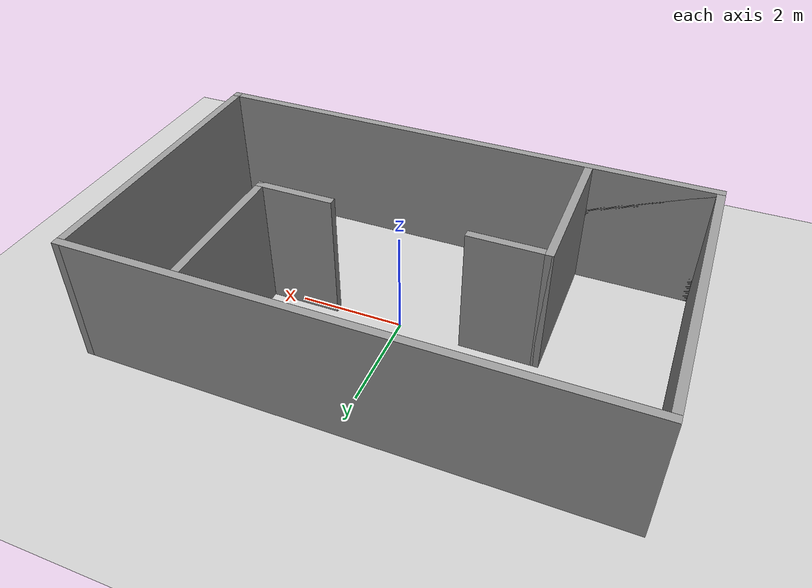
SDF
<sdf version="1.7">
 <world name="default">
  <light name="sun" type="directional">
   <pose>0 0 10 0 -0 0</pose>
   <diffuse>0.8 0.8 0.8 1</diffuse>
   <specular>0.2 0.2 0.2 1</specular>
   <attenuation>
    <range>1000</range>
    <constant>0.9</constant>
    <linear>0.01</linear>
    <quadratic>0.001</quadratic>
   </attenuation>
   <direction>-0.5 0.1 -0.9</direction>
   <spot><inner_angle>0</inner_angle><outer_angle>0</outer_angle><falloff>0</falloff></spot>
  </light>
  <model name="ground_plane">
   <static>1</static>
   <link name="link">
    <collision name="collision">
     <geometry><plane><normal>0 0 1</normal><size>100 100</size></plane></geometry>
     <surface><friction><ode><mu>100</mu><mu2>50</mu2></ode></friction></surface>
    </collision>
    <visual name="visual">
     <cast_shadows>0</cast_shadows>
     <geometry><plane><normal>0 0 1</normal><size>100 100</size></plane></geometry>
     <material>
      <script><uri>file://media/materials/scripts/gazebo.material</uri><name>Gazebo/Grey</name></script>
     </material>
    </visual>
   </link>
  </model>
  <gravity>0 0 -9.8</gravity>
  <magnetic_field>6e-06 2.3e-05 -4.2e-05</magnetic_field>
  <atmosphere type="adiabatic"/>
  <physics type="ode">
   <max_step_size>0.001</max_step_size>
   <real_time_factor>1</real_time_factor>
   <real_time_update_rate>1000</real_time_update_rate>
  </physics>
  <scene><ambient>0.4 0.4 0.4 1</ambient><background>0.7 0.7 0.7 1</background><shadows>1</shadows></scene>
  <audio><device>default</device></audio>
  <spherical_coordinates>
   <surface_model>EARTH_WGS84</surface_model>
   <latitude_deg>0</latitude_deg>
   <longitude_deg>0</longitude_deg>
   <elevation>0</elevation>
   <heading_deg>0</heading_deg>
  </spherical_coordinates>
  <model name="map1">
   <pose>-0.045216 -0.03385 0 0 -0 0</pose>
   <link name="Wall_1">
    <collision name="Wall_1_Collision">
     <geometry><box><size>10 0.15 2.5</size></box></geometry>
     <pose>0 0 1.25 0 -0 0</pose>
    </collision>
    <visual name="Wall_1_Visual">
     <pose>0 0 1.25 0 -0 0</pose>
     <geometry><box><size>10 0.15 2.5</size></box></geometry>
     <material>
      <script><uri>file://media/materials/scripts/gazebo.material</uri><name>Gazebo/Grey</name></script>
      <ambient>1 1 1 1</ambient>
     </material>
     <meta><layer>0</layer></meta>
    </visual>
    <pose>0 -2.8 0 0 -0 0</pose>
   </link>
   <link name="Wall_15">
    <collision name="Wall_15_Collision">
     <geometry><box><size>2.5 0.15 2.5</size></box></geometry>
     <pose>0 0 1.25 0 -0 0</pose>
    </collision>
    <visual name="Wall_15_Visual">
     <pose>0 0 1.25 0 -0 0</pose>
     <geometry><box><size>2.5 0.15 2.5</size></box></geometry>
     <material>
      <script><uri>file://media/materials/scripts/gazebo.material</uri><name>Gazebo/Grey</name></script>
      <ambient>1 1 1 1</ambient>
     </material>
     <meta><layer>0</layer></meta>
    </visual>
    <pose>-3.75 -2.8 0 0 -0 0</pose>
   </link>
   <link name="Wall_16">
    <collision name="Wall_16_Collision">
     <geometry><box><size>3 0.15 2.5</size></box></geometry>
     <pose>0 0 1.25 0 -0 0</pose>
    </collision>
    <visual name="Wall_16_Visual">
     <pose>0 0 1.25 0 -0 0</pose>
     <geometry><box><size>3 0.15 2.5</size></box></geometry>
     <material>
      <script><uri>file://media/materials/scripts/gazebo.material</uri><name>Gazebo/Grey</name></script>
      <ambient>1 1 1 1</ambient>
     </material>
     <meta><layer>0</layer></meta>
    </visual>
    <pose>-2.575 -1.375 0 0 -0 1.5708</pose>
   </link>
   <link name="Wall_17">
    <collision name="Wall_17_Collision">
     <geometry><box><size>1.5 0.15 2.5</size></box></geometry>
     <pose>0 0 1.25 0 -0 0</pose>
    </collision>
    <visual name="Wall_17_Visual">
     <pose>0 0 1.25 0 -0 0</pose>
     <geometry><box><size>1.5 0.15 2.5</size></box></geometry>
     <material>
      <script><uri>file://media/materials/scripts/gazebo.material</uri><name>Gazebo/Grey</name></script>
      <ambient>1 1 1 1</ambient>
     </material>
     <meta><layer>0</layer></meta>
    </visual>
    <pose>-1.9 0.05 0 0 -0 0</pose>
   </link>
   <link name="Wall_2">
    <collision name="Wall_2_Collision">
     <geometry><box><size>5.75 0.15 2.5</size></box></geometry>
     <pose>0 0 1.25 0 -0 0</pose>
    </collision>
    <visual name="Wall_2_Visual">
     <pose>0 0 1.25 0 -0 0</pose>
     <geometry><box><size>5.75 0.15 2.5</size></box></geometry>
     <material>
      <script><uri>file://media/materials/scripts/gazebo.material</uri><name>Gazebo/Grey</name></script>
      <ambient>1 1 1 1</ambient>
     </material>
     <meta><layer>0</layer></meta>
    </visual>
    <pose>4.925 0 0 0 -0 1.5708</pose>
   </link>
   <link name="Wall_29">
    <collision name="Wall_29_Collision">
     <geometry><box><size>1.5 0.15 2.5</size></box></geometry>
     <pose>0 0 1.25 0 -0 0</pose>
    </collision>
    <visual name="Wall_29_Visual">
     <pose>0 0 1.25 0 -0 0</pose>
     <geometry><box><size>1.5 0.15 2.5</size></box></geometry>
     <material>
      <script><uri>file://media/materials/scripts/gazebo.material</uri><name>Gazebo/Grey</name></script>
      <ambient>1 1 1 1</ambient>
     </material>
     <meta><layer>0</layer></meta>
    </visual>
    <pose>2.05 0.05 0 0 -0 0</pose>
   </link>
   <link name="Wall_3">
    <collision name="Wall_3_Collision">
     <geometry><box><size>10 0.15 2.5</size></box></geometry>
     <pose>0 0 1.25 0 -0 0</pose>
    </collision>
    <visual name="Wall_3_Visual">
     <pose>0 0 1.25 0 -0 0</pose>
     <geometry><box><size>10 0.15 2.5</size></box></geometry>
     <material>
      <script><uri>file://media/materials/scripts/gazebo.material</uri><name>Gazebo/Grey</name></script>
      <ambient>1 1 1 1</ambient>
     </material>
     <meta><layer>0</layer></meta>
    </visual>
    <pose>0 2.8 0 0 -0 3.14159</pose>
   </link>
   <link name="Wall_32">
    <collision name="Wall_32_Collision">
     <geometry><box><size>2.75 0.15 2.5</size></box></geometry>
     <pose>0 0 1.25 0 -0 0</pose>
    </collision>
    <visual name="Wall_32_Visual">
     <pose>0 0 1.25 0 -0 0</pose>
     <geometry><box><size>2.75 0.15 2.5</size></box></geometry>
     <material>
      <script><uri>file://media/materials/scripts/gazebo.material</uri><name>Gazebo/Grey</name></script>
      <ambient>1 1 1 1</ambient>
     </material>
     <meta><layer>0</layer></meta>
    </visual>
    <pose>2.725 1.35 0 0 -0 1.5708</pose>
   </link>
   <link name="Wall_5">
    <collision name="Wall_5_Collision">
     <geometry><box><size>5.75 0.15 2.5</size></box></geometry>
     <pose>0 0 1.25 0 -0 0</pose>
    </collision>
    <visual name="Wall_5_Visual">
     <pose>0 0 1.25 0 -0 0</pose>
     <geometry><box><size>5.75 0.15 2.5</size></box></geometry>
     <material>
      <script><uri>file://media/materials/scripts/gazebo.material</uri><name>Gazebo/Grey</name></script>
      <ambient>1 1 1 1</ambient>
     </material>
     <meta><layer>0</layer></meta>
    </visual>
    <pose>-4.925 0 0 0 -0 1.5708</pose>
   </link>
   <static>1</static>
  </model>
 </world>
</sdf>
